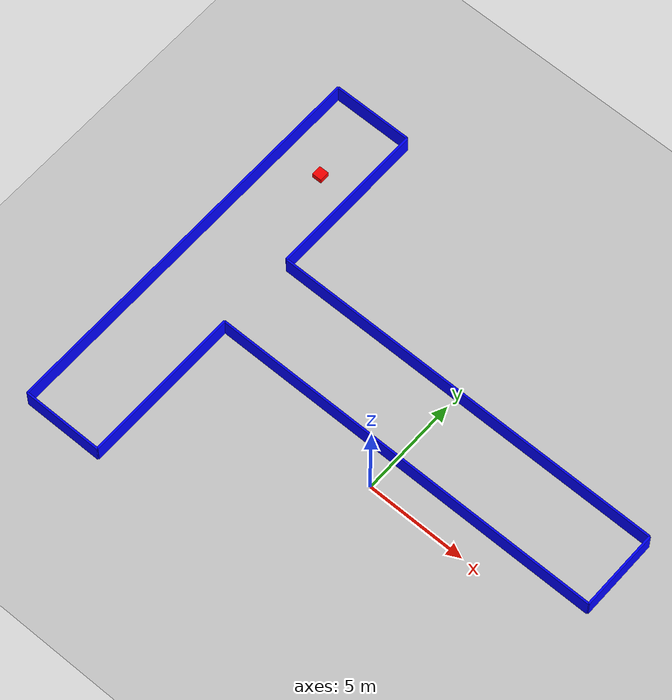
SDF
<sdf version="1.9">
 <world name="world_demo">
  <gravity>0 0 -9.8</gravity>
  <physics type="ode">
   <max_step_size>0.01</max_step_size>
   <real_time_factor>1</real_time_factor>
   <real_time_update_rate>1000</real_time_update_rate>
  </physics>
  <plugin name="ignition::gazebo::systems::Physics" filename="libignition-gazebo-physics-system.so"/>
  <plugin name="ignition::gazebo::systems::UserCommands" filename="libignition-gazebo-user-commands-system.so"/>
  <plugin name="ignition::gazebo::systems::SceneBroadcaster" filename="libignition-gazebo-scene-broadcaster-system.so"/>
  <plugin name="ignitino::gazebo::systems::WorldReset" filename="libgazebo_ros_init.so"/>
  <plugin name="ignition::gazebo::systems::Imu" filename="ignition-gazebo-imu-system"/>
  <plugin name="ignition::gazebo::systems::Sensors" filename="ignition-gazebo-sensors-system">
   <render_engine>ogre2</render_engine>
  </plugin>
  <scene>
   <ambient>1 1 1 1</ambient>
   <background>0.3 0.7 0.9 1</background>
   <shadows>false</shadows>
   <grid>false</grid>
  </scene>
  <magnetic_field>6e-06 2.3e-05 -4.2e-05</magnetic_field>
  <atmosphere type="adiabatic"/>
  <model name="ground_plane">
   <static>true</static>
   <link name="link">
    <collision name="collision">
     <geometry><plane><normal>0 0 1</normal><size>1 1</size></plane></geometry>
    </collision>
    <visual name="visual">
     <geometry><plane><normal>0 0 1</normal><size>100 100</size></plane></geometry>
     <material>
      <ambient>1 1 1 1</ambient>
      <diffuse>0.8 0.8 0.8 1</diffuse>
      <specular>0.8 0.8 0.8 1</specular>
     </material>
    </visual>
    <inertial>
     <mass>1</mass>
     <inertia><ixx>1</ixx><ixy>0</ixy><ixz>0</ixz><iyy>1</iyy><iyz>0</iyz><izz>1</izz></inertia>
    </inertial>
   </link>
  </model>
  <model name="wall1" canonical_link="wall_A">
   <static>true</static>
   <pose>0 1 0 -0 -0 0</pose>
   <link name="wall_A">
    <pose>0.5 0.5 0.5 0 -0 0</pose>
    <inertial>
     <mass>1.14395</mass>
     <inertia>
      <ixx>0.095328999999999997</ixx>
      <ixy>0</ixy>
      <ixz>0</ixz>
      <iyy>0.38131700000000002</iyy>
      <iyz>0</iyz>
      <izz>0.47664600000000001</izz>
     </inertia>
    </inertial>
    <visual name="visual">
     <geometry><box><size>20 0.1 1</size></box></geometry>
     <material><ambient>0 0 1 1</ambient><diffuse>0 0 1 1</diffuse><specular>0 0 1 1</specular></material>
    </visual>
    <collision name="collision"><geometry><box><size>20 0.1 1</size></box></geometry></collision>
   </link>
   <static>false</static>
  </model>
  <model name="wall2" canonical_link="wall_B">
   <static>true</static>
   <pose>10 3 0 -0 -0 0</pose>
   <link name="wall_B">
    <pose>0.5 0.5 0.5 0 -0 0</pose>
    <inertial>
     <mass>1.14395</mass>
     <inertia>
      <ixx>0.095328999999999997</ixx>
      <ixy>0</ixy>
      <ixz>0</ixz>
      <iyy>0.38131700000000002</iyy>
      <iyz>0</iyz>
      <izz>0.47664600000000001</izz>
     </inertia>
    </inertial>
    <visual name="visual">
     <geometry><box><size>0.1 4 1</size></box></geometry>
     <material><ambient>0 0 1 1</ambient><diffuse>0 0 1 1</diffuse><specular>0 0 1 1</specular></material>
    </visual>
    <collision name="collision"><geometry><box><size>0.1 4 1</size></box></geometry></collision>
   </link>
   <static>false</static>
  </model>
  <model name="wall3" canonical_link="wall_C">
   <static>true</static>
   <pose>0 5 0 -0 -0 0</pose>
   <link name="wall_C">
    <pose>0.5 0.5 0.5 0 -0 0</pose>
    <inertial>
     <mass>1.14395</mass>
     <inertia>
      <ixx>0.095328999999999997</ixx>
      <ixy>0</ixy>
      <ixz>0</ixz>
      <iyy>0.38131700000000002</iyy>
      <iyz>0</iyz>
      <izz>0.47664600000000001</izz>
     </inertia>
    </inertial>
    <visual name="visual">
     <geometry><box><size>20 0.1 1</size></box></geometry>
     <material><ambient>0 0 1 1</ambient><diffuse>0 0 1 1</diffuse><specular>0 0 1 1</specular></material>
    </visual>
    <collision name="collision"><geometry><box><size>20 0.1 1</size></box></geometry></collision>
   </link>
   <static>false</static>
  </model>
  <model name="wall4" canonical_link="wall_D">
   <static>true</static>
   <pose>-14 3 0 -0 -0 0</pose>
   <link name="wall_D">
    <pose>0.5 0.5 0.5 0 -0 0</pose>
    <inertial>
     <mass>1.14395</mass>
     <inertia>
      <ixx>0.095328999999999997</ixx>
      <ixy>0</ixy>
      <ixz>0</ixz>
      <iyy>0.38131700000000002</iyy>
      <iyz>0</iyz>
      <izz>0.47664600000000001</izz>
     </inertia>
    </inertial>
    <visual name="visual">
     <geometry><box><size>0.1 20 1</size></box></geometry>
     <material><ambient>0 0 1 1</ambient><diffuse>0 0 1 1</diffuse><specular>0 0 1 1</specular></material>
    </visual>
    <collision name="collision"><geometry><box><size>0.1 20 1</size></box></geometry></collision>
   </link>
   <static>false</static>
  </model>
  <model name="wall5" canonical_link="wall_E">
   <static>true</static>
   <pose>-10 -3 0 -0 -0 0</pose>
   <link name="wall_E">
    <pose>0.5 0.5 0.5 0 -0 0</pose>
    <inertial>
     <mass>1.14395</mass>
     <inertia>
      <ixx>0.095328999999999997</ixx>
      <ixy>0</ixy>
      <ixz>0</ixz>
      <iyy>0.38131700000000002</iyy>
      <iyz>0</iyz>
      <izz>0.47664600000000001</izz>
     </inertia>
    </inertial>
    <visual name="visual">
     <geometry><box><size>0.1 8 1</size></box></geometry>
     <material><ambient>0 0 1 1</ambient><diffuse>0 0 1 1</diffuse><specular>0 0 1 1</specular></material>
    </visual>
    <collision name="collision"><geometry><box><size>0.1 8 1</size></box></geometry></collision>
   </link>
   <static>false</static>
  </model>
  <model name="wall6" canonical_link="wall_F">
   <static>true</static>
   <pose>-10 9 0 -0 -0 0</pose>
   <link name="wall_F">
    <pose>0.5 0.5 0.5 0 -0 0</pose>
    <inertial>
     <mass>1.14395</mass>
     <inertia>
      <ixx>0.095328999999999997</ixx>
      <ixy>0</ixy>
      <ixz>0</ixz>
      <iyy>0.38131700000000002</iyy>
      <iyz>0</iyz>
      <izz>0.47664600000000001</izz>
     </inertia>
    </inertial>
    <visual name="visual">
     <geometry><box><size>0.1 8 1</size></box></geometry>
     <material><ambient>0 0 1 1</ambient><diffuse>0 0 1 1</diffuse><specular>0 0 1 1</specular></material>
    </visual>
    <collision name="collision"><geometry><box><size>0.1 8 1</size></box></geometry></collision>
   </link>
   <static>false</static>
  </model>
  <model name="wall7" canonical_link="wall_G">
   <static>true</static>
   <pose>-12 -7 0 -0 -0 0</pose>
   <link name="wall_G">
    <pose>0.5 0.5 0.5 0 -0 0</pose>
    <inertial>
     <mass>1.14395</mass>
     <inertia>
      <ixx>0.095328999999999997</ixx>
      <ixy>0</ixy>
      <ixz>0</ixz>
      <iyy>0.38131700000000002</iyy>
      <iyz>0</iyz>
      <izz>0.47664600000000001</izz>
     </inertia>
    </inertial>
    <visual name="visual">
     <geometry><box><size>4 0.1 1</size></box></geometry>
     <material><ambient>0 0 1 1</ambient><diffuse>0 0 1 1</diffuse><specular>0 0 1 1</specular></material>
    </visual>
    <collision name="collision"><geometry><box><size>4 0.1 1</size></box></geometry></collision>
   </link>
   <static>false</static>
  </model>
  <model name="wall8" canonical_link="wall_H">
   <static>true</static>
   <pose>-12 13 0 -0 -0 0</pose>
   <link name="wall_H">
    <pose>0.5 0.5 0.5 0 -0 0</pose>
    <inertial>
     <mass>1.14395</mass>
     <inertia>
      <ixx>0.095328999999999997</ixx>
      <ixy>0</ixy>
      <ixz>0</ixz>
      <iyy>0.38131700000000002</iyy>
      <iyz>0</iyz>
      <izz>0.47664600000000001</izz>
     </inertia>
    </inertial>
    <visual name="visual">
     <geometry><box><size>4 0.1 1</size></box></geometry>
     <material><ambient>0 0 1 1</ambient><diffuse>0 0 1 1</diffuse><specular>0 0 1 1</specular></material>
    </visual>
    <collision name="collision"><geometry><box><size>4 0.1 1</size></box></geometry></collision>
   </link>
   <static>false</static>
  </model>
  <model name="end_point" canonical_link="end">
   <static>true</static>
   <pose>-11.5 10 0 -0 -0 0</pose>
   <link name="end">
    <inertial>
     <mass>1.14395</mass>
     <inertia>
      <ixx>0.095328999999999997</ixx>
      <ixy>0</ixy>
      <ixz>0</ixz>
      <iyy>0.38131700000000002</iyy>
      <iyz>0</iyz>
      <izz>0.47664600000000001</izz>
     </inertia>
    </inertial>
    <visual name="visual">
     <geometry><box><size>0.5 0.5 0.5</size></box></geometry>
     <material><ambient>1 0 0 1</ambient><diffuse>1 0 0 1</diffuse><specular>1 0 0 1</specular></material>
    </visual>
    <collision name="collision"><geometry><box><size>0.1 0.1 0.1</size></box></geometry></collision>
   </link>
   <static>false</static>
   <plugin name="ignition::gazebo::systems::PosePublisher" filename="ignition-gazebo-pose-publisher-system">
    <publish_link_pose>false</publish_link_pose>
    <publish_collision_pose>false</publish_collision_pose>
    <publish_visual_pose>false</publish_visual_pose>
    <publish_sensor_pose>false</publish_sensor_pose>
    <publish_nested_model_pose>true</publish_nested_model_pose>
    <update_frequency>10</update_frequency>
   </plugin>
  </model>
  <light name="sun" type="directional">
   <pose>-5 -3 10 0 -0 0</pose>
   <cast_shadows>false</cast_shadows>
   <intensity>1</intensity>
   <direction>0 0 -1</direction>
   <diffuse>1 1 1 1</diffuse>
   <specular>1 1 1 1</specular>
   <attenuation><range>10</range><linear>1</linear><constant>1</constant><quadratic>0</quadratic></attenuation>
   <spot><inner_angle>0</inner_angle><outer_angle>0</outer_angle><falloff>0</falloff></spot>
  </light>
 </world>
</sdf>
